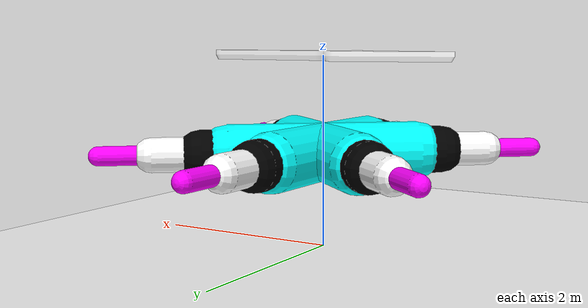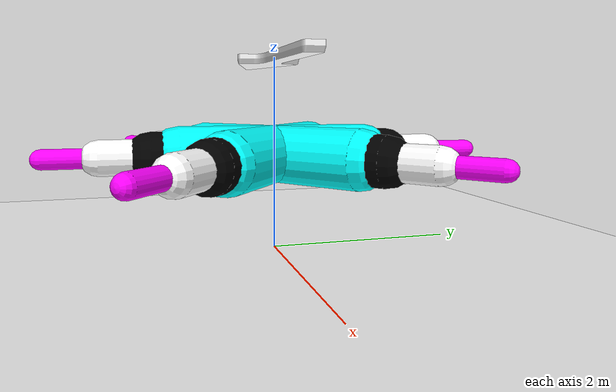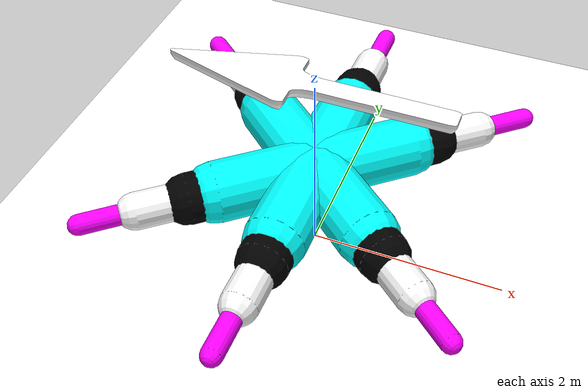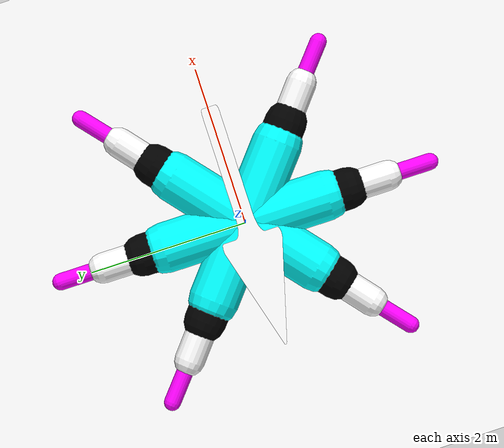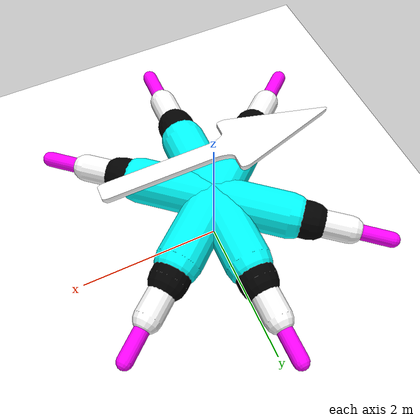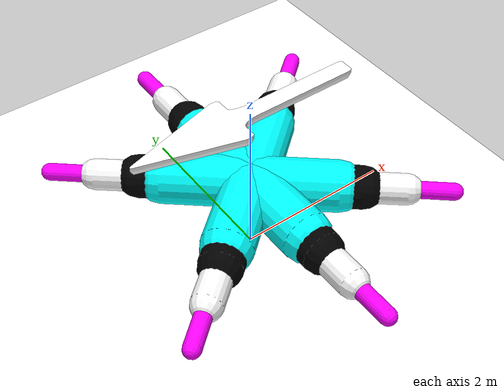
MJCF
<mujoco>
    <compiler inertiafromgeom="true" angle="degree"/>

    <default>
        <joint limited="true" damping="1" armature="0"/>
        <geom condim="1" material="matgeom"/>
        <position ctrlrange="-.4 .4" ctrllimited="true"/>
    </default>

    <option timestep="0.005" iterations="50" tolerance="1e-10" solver="Newton" jacobian="dense" cone="pyramidal"/>

    <size nconmax="50" njmax="200" nstack="10000"/>

    <visual>
        <map force="0.1" zfar="30"/>
        <rgba haze="0.15 0.25 0.35 1"/>
        <quality shadowsize="2048"/>
    </visual>

    <asset>
        <texture type="skybox" builtin="gradient" rgb1="0.3 0.5 0.7" rgb2="0.6 0.6 0.8" width="512" height="512"/>

        <texture name="texplane" type="2d" builtin="checker" rgb1=".2 .3 .4" rgb2=".1 0.15 0.2" width="512" height="512" mark="cross" markrgb=".8 .8 .8"/>

        <texture name="texgeom" type="cube" builtin="flat" mark="cross" width="127" height="1278"
            rgb1="0.8 0.6 0.4" rgb2="0.8 0.6 0.4" markrgb="1 1 1" random="0.01"/>

        <material name="matplane" reflectance="0.0003" texture="texplane" texrepeat="1 1" texuniform="true"/>

        <material name="matgeom" texture="texgeom" texuniform="true" rgba="0.8 0.6 .4 1"/>
        <material name="matgeom1" texture="texgeom" texuniform="true" rgba="0.8 0.6 .4 1"/>
        <material name="matgeom2" texture="texgeom" texuniform="true" rgba="0.8 0.6 .4 1"/>
        <material name="matgeom3" texture="texgeom" texuniform="true" rgba="0.8 0.6 .4 1"/>
    </asset>

    <asset>
        <mesh name="arrow" file="arrow.stl" scale="0.3 0.1 0.5"/>

        <texture name="texarrow" type="2d" builtin="flat" mark="cross" width="127" height="1278"
            rgb1="0.8 0.6 0.4" rgb2="0.8 0.6 0.4" markrgb="1 1 1" random="0.01" />
        <material name="matarrow" reflectance="0.0003" texture="texarrow" texrepeat="1 1" texuniform="true"/>
    </asset>

    <worldbody>
        <geom name="floor" friction="1 1 1" pos="0 0 0" size="0 0 .25" type="plane" material="matplane" rgba="250 229 2 1" condim="3"/>

        <body pos="0 0 2" name="arrow">
            <joint name="arrow_x" type="slide" limited="false" damping="1000000" axis="1 0 0" />
            <joint name="arrow_y" type="slide" limited="false" damping="1000000" axis="0 1 0" />

            <geom mass="3500" type="sphere" size="0.03 0.03"/>

            <body pos="0 0 0">
                <joint name="arrow_rotation" type="hinge" limited="false" damping="10000" axis="0 0 -1" />

                <geom name="arrow" type="mesh" mesh="arrow" material="matarrow" rgba="250 229 2 1"/>
            </body>
        </body>

        <body name="spider" pos="0 0 1">
            <camera name="track" mode="trackcom" pos="0 -6 6" euler="45 0 0"/>

            <freejoint name="root"/>
            <geom name="spider/torso1" material="matgeom1" mass="3500" type="capsule" fromto="-.766 .6428 0 .766 -.6428 0"  size="0.3 0.3" rgba="0 250 250 1"/>
            <geom name="spider/torso2" material="matgeom2" mass="3500" type="capsule" fromto=".766 .6428 0 -.766 -.6428 0"  size="0.3 0.3" rgba="0 250 250 1"/>
            <geom name="spider/torso3" material="matgeom3" mass="3500" type="capsule" fromto="0 1 0 0 -1 0"  size="0.3 0.3" rgba="0 250 250 1"/>

            <body name="leg1" pos="0 1 0">
                <joint name="1"  type="hinge" pos="0 0 0" damping="4000" axis="0 0 1" range="-90 90"   />
                <geom type="capsule" rgba="0 0 0 1" fromto="0 0 0 0 0.27 0"  size="0.25 0.25" />
                <body pos="0 0.27 0">
                    <joint name="7" type="hinge" pos="0 0 0" damping="4000" axis="1 0 0" range="-90 0"    />
                    <geom friction="000 000 000" type="capsule" rgba="250 229 2 1" fromto="0 0 0 0 0.49 0"  size="0.18 0.18" />
                    <body pos="0 0.49 0">
                        <joint name="13" type="hinge" pos="0 0 0" damping="4000" axis="1 0 0" range="-90 0"    />
                        <geom friction="000 0390 000"  type="capsule" rgba="250 0 80 1" fromto="0 0 0 0 0.52 0"  size=".1 .1" />
                    </body>

                </body>
            </body>

            <body name="leg4" pos="0 -1 0">
                <joint name="4" type="hinge" pos="0 0 0" axis="0 0 1" damping="4000" range="-90 90"   />
                <geom type="capsule" rgba="0 0 0 1" fromto="0 0 0 0 -.27 0"  size="0.25 0.25" />
                <body pos="0 -.27 0">
                    <joint name="10" type="hinge" pos="0 0 0" axis="-1 0 0" damping="4000" range="-90 0"   />
                    <geom friction="000 000 000" type="capsule" rgba="250 229 2 1" fromto="0 0 0 0 -.49 0"  size="0.18 0.18" />
                    <body pos="0 -.49 0">
                        <joint name="16" type="hinge" pos="0 0 0" axis="-1 0 0" damping="4000" range="-90 0"   />
                        <geom friction="000 0390 000" type="capsule" rgba="250 0 80 1" fromto="0 0 0 0 -.52 0"  size=".1 .1" />
                    </body>

                </body>
            </body>

            <body name="leg2" pos="0.766 0.6428 0">
                <joint name="2" type="hinge" pos="0 0 0" axis="0 0 1" damping="4000" range="-90 90"   />
                <geom type="capsule" rgba="0 0 0 1" fromto="0 0 0 0.204 0.174 0"  size="0.25 0.25" />
                <body pos=".204 .174 0">
                    <joint name="8" type="hinge" pos="0 0 0" axis=".5 -.65 0" damping="4000" range="-90 0"   />
                    <geom friction="000 000 000" type="capsule" rgba="250 229 2 1" fromto="0 0 0 .38 .314 0"  size="0.18 0.18" />
                    <body pos=".38 .314 0">
                        <joint name="14" type="hinge" pos="0 0 0" axis=".5 -.65 0" damping="4000" range="-90 0"   />
                        <geom friction="000 0390 000" type="capsule" rgba="250 0 80 1" fromto="0 0 0 .4 .34 0"  size=".1 .1" />
                    </body>

                </body>
            </body>

            <body name="leg6" pos="-.766 .6428 0">
                <joint name="6" type="hinge" pos="0 0 0" axis="0 0 1" damping="4000" range="-90 90"   />
                <geom type="capsule" rgba="0 0 0 1" fromto="0 0 0 -.204 .174 0"  size="0.25 0.25" />
                <body pos="-.204 .174 0">
                    <joint name="12" type="hinge" pos="0 0 0" axis=".5 .65 0" damping="4000" range="-90 0"   />
                    <geom friction="000 000 000" type="capsule" rgba="250 229 2 1" fromto="0 0 0 -.38 .314 0"  size="0.18 0.18" />
                    <body pos="-.38 .314 0">
                        <joint name="18" type="hinge" pos="0 0 0" axis=".5 .65 0" damping="4000" range="-90 0"   />
                        <geom friction="000 0390 000" type="capsule" rgba="250 0 80 1" fromto="0 0 0 -.4 .34 0"  size=".1 .1" />
                    </body>

                </body>
            </body>

            <body name="leg3" pos=".766 -.6428 0">
                <joint name="3" type="hinge" pos="0 0 0" axis="0 0 1" damping="4000" range="-90 90"   />
                <geom type="capsule" rgba="0 0 0 1" fromto="0 0 0 .204 -.174 0"  size="0.25 0.25" />
                <body pos=".204 -.174 0">
                    <joint name="9" type="hinge" pos="0 0 0" axis="-.5 -.65 0" damping="4000" range="-90 0"   />
                    <geom friction="000 000 000" type="capsule" rgba="250 229 2 1" fromto="0 0 0 .38 -.314 0"  size="0.18 0.18" />
                    <body pos=".38 -.314 0">
                        <joint name="15" type="hinge" pos="0 0 0" axis="-.5 -.65 0" damping="4000" range="-90 0"   />
                        <geom friction="000 0390 000" type="capsule" rgba="250 0 80 1" fromto="0 0 0 .4 -.34 0"  size=".1 .1" />
                    </body>

                </body>
            </body>

            <body name="leg5" pos="-.766 -.6428 0">
                <joint name="5" type="hinge" pos="0 0 0" axis="0 0 1" range="-90 90" damping="4000" />
                <geom type="capsule" rgba="0 0 0 1" fromto="0 0 0 -.204 -.174 0"  size="0.25 0.25" />
                <body pos="-.204 -.174 0">
                    <joint name="11" type="hinge" pos="0 0 0" axis="-.5 .65 0"  damping="4000" range="-90 0"   />
                    <geom friction="000 000 000" type="capsule" rgba="250 229 2 1" fromto="0 0 0 -.38 -.314 0"  size="0.18 0.18" />
                    <body pos="-.38 -.314 0">
                        <joint name="17" type="hinge" pos="0 0 0" axis="-.5 .65 0" damping="4000" range="-90 0"   />
                        <geom friction="000 0390 000" type="capsule" rgba="250 0 80 1" fromto="0 0 0 -.4 -.34 0"  size=".1 .1" />
                    </body>

                </body>
            </body>

        </body>

    </worldbody>
    <actuator>
        <position ctrllimited="true" ctrlrange="-360 360" gear="55" kp="50" name="arrow_rotation" joint="arrow_rotation"/>
        <position ctrllimited="true" ctrlrange="-100 100" kp="5000000" name="arrow_x" joint="arrow_x"/>
        <position ctrllimited="true" ctrlrange="-100 100" kp="5000000" name="arrow_y" joint="arrow_y"/>

        <position ctrllimited="true" ctrlrange="-90 90" gear="55" kp="6" name="g1" joint="1"/>
        <position ctrllimited="true" ctrlrange="-90 90" gear="55" kp="6" name="g2" joint="2" />
        <position ctrllimited="true" ctrlrange="-90 90" gear="55" kp="6" name="g3" joint="3" />
        <position ctrllimited="true" ctrlrange="-90 90" gear="55" kp="6" name="g4" joint="4" />
        <position ctrllimited="true" ctrlrange="-90 90" gear="55" kp="6" name="g5" joint="5" />
        <position ctrllimited="true" ctrlrange="-90 90" gear="55" kp="6" name="g6" joint="6" />

        <position ctrllimited="true" ctrlrange="-90 90" gear="55" kp="6" name="g_g1" joint="7" />
        <position ctrllimited="true" ctrlrange="-90 90" gear="55" kp="6" name="g_g2" joint="8" />
        <position ctrllimited="true" ctrlrange="-90 90" gear="55" kp="6" name="g_g3" joint="9" />
        <position ctrllimited="true" ctrlrange="-90 90" gear="55" kp="6" name="g_g4" joint="10" />
        <position ctrllimited="true" ctrlrange="-90 90" gear="55" kp="6" name="g_g5" joint="11" />
        <position ctrllimited="true" ctrlrange="-90 90" gear="55" kp="6" name="g_g6" joint="12" />

        <position ctrllimited="true" ctrlrange="-90 90" gear="55" kp="6" name="g_g_g1" joint="13" />
        <position ctrllimited="true" ctrlrange="-90 90" gear="55" kp="6" name="g_g_g2" joint="14" />
        <position ctrllimited="true" ctrlrange="-90 90" gear="55" kp="6" name="g_g_g3" joint="15" />
        <position ctrllimited="true" ctrlrange="-90 90" gear="55" kp="6" name="g_g_g4" joint="16" />
        <position ctrllimited="true" ctrlrange="-90 90" gear="55" kp="6" name="g_g_g5" joint="17" />
        <position ctrllimited="true" ctrlrange="-90 90" gear="55" kp="6" name="g_g_g6" joint="18" />

    </actuator>
</mujoco>
